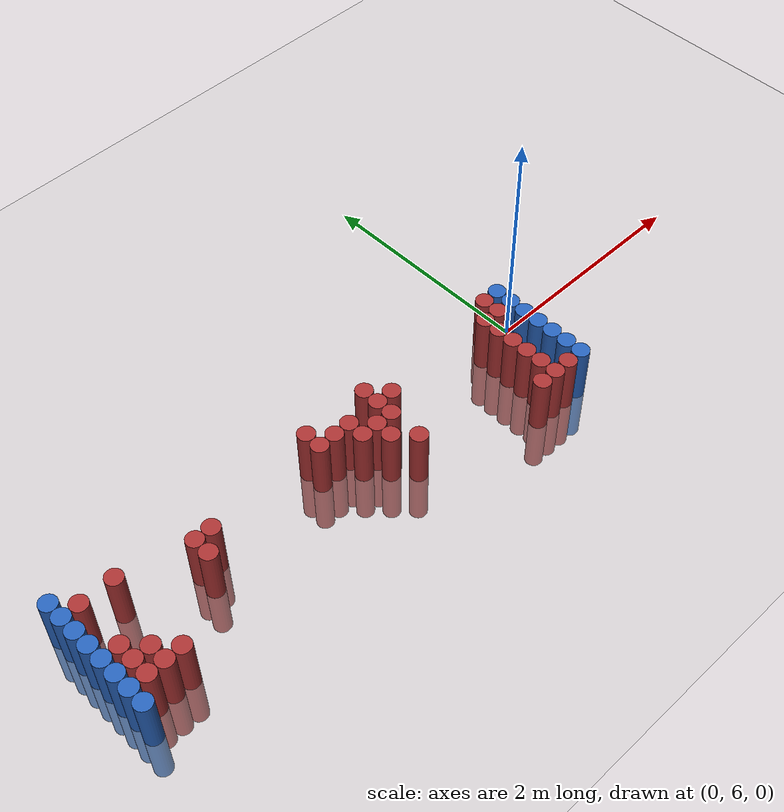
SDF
<sdf version="1.6">
 <world name="default">
  <model name="ground_plane">
   <static>1</static>
   <link name="link">
    <collision name="collision">
     <geometry><plane><normal>0 0 1</normal><size>100 100</size></plane></geometry>
     <surface><friction><ode><mu>100</mu><mu2>50</mu2></ode></friction></surface>
    </collision>
    <visual name="visual">
     <cast_shadows>0</cast_shadows>
     <geometry><plane><normal>0 0 1</normal><size>100 100</size></plane></geometry>
     <material>
      <script><uri>file://media/materials/scripts/gazebo.material</uri><name>Gazebo/Grey</name></script>
     </material>
    </visual>
   </link>
  </model>
  <model name="unit_cylinder_96">
   <static>1</static>
   <pose>-4.425000 5.175000 0.000000 0.000000 0.000000 0.000000</pose>
   <link name="link">
    <inertial>
     <mass>1</mass>
     <inertia><ixx>0.145833</ixx><ixy>0</ixy><ixz>0</ixz><iyy>0.145833</iyy><iyz>0</iyz><izz>0.125</izz></inertia>
    </inertial>
    <collision name="collision">
     <geometry><cylinder><radius>0.075000</radius><length>1</length></cylinder></geometry>
    </collision>
    <visual name="visual">
     <geometry><cylinder><radius>0.075000</radius><length>1</length></cylinder></geometry>
     <material>
      <ambient>0.152000 0.379000 0.720000 1</ambient>
      <diffuse>0.152000 0.379000 0.720000 1</diffuse>
     </material>
     <material>
      <script><name>Gazebo/Grey</name><uri>file://media/materials/scripts/gazebo.material</uri></script>
     </material>
    </visual>
   </link>
  </model>
  <model name="unit_cylinder_97">
   <static>1</static>
   <pose>-4.425000 5.325000 0.000000 0.000000 0.000000 0.000000</pose>
   <link name="link">
    <inertial>
     <mass>1</mass>
     <inertia><ixx>0.145833</ixx><ixy>0</ixy><ixz>0</ixz><iyy>0.145833</iyy><iyz>0</iyz><izz>0.125</izz></inertia>
    </inertial>
    <collision name="collision">
     <geometry><cylinder><radius>0.075000</radius><length>1</length></cylinder></geometry>
    </collision>
    <visual name="visual">
     <geometry><cylinder><radius>0.075000</radius><length>1</length></cylinder></geometry>
     <material>
      <ambient>0.152000 0.379000 0.720000 1</ambient>
      <diffuse>0.152000 0.379000 0.720000 1</diffuse>
     </material>
     <material>
      <script><name>Gazebo/Grey</name><uri>file://media/materials/scripts/gazebo.material</uri></script>
     </material>
    </visual>
   </link>
  </model>
  <model name="unit_cylinder_98">
   <static>1</static>
   <pose>-4.425000 5.475000 0.000000 0.000000 0.000000 0.000000</pose>
   <link name="link">
    <inertial>
     <mass>1</mass>
     <inertia><ixx>0.145833</ixx><ixy>0</ixy><ixz>0</ixz><iyy>0.145833</iyy><iyz>0</iyz><izz>0.125</izz></inertia>
    </inertial>
    <collision name="collision">
     <geometry><cylinder><radius>0.075000</radius><length>1</length></cylinder></geometry>
    </collision>
    <visual name="visual">
     <geometry><cylinder><radius>0.075000</radius><length>1</length></cylinder></geometry>
     <material>
      <ambient>0.152000 0.379000 0.720000 1</ambient>
      <diffuse>0.152000 0.379000 0.720000 1</diffuse>
     </material>
     <material>
      <script><name>Gazebo/Grey</name><uri>file://media/materials/scripts/gazebo.material</uri></script>
     </material>
    </visual>
   </link>
  </model>
  <model name="unit_cylinder_99">
   <static>1</static>
   <pose>-4.425000 5.625000 0.000000 0.000000 0.000000 0.000000</pose>
   <link name="link">
    <inertial>
     <mass>1</mass>
     <inertia><ixx>0.145833</ixx><ixy>0</ixy><ixz>0</ixz><iyy>0.145833</iyy><iyz>0</iyz><izz>0.125</izz></inertia>
    </inertial>
    <collision name="collision">
     <geometry><cylinder><radius>0.075000</radius><length>1</length></cylinder></geometry>
    </collision>
    <visual name="visual">
     <geometry><cylinder><radius>0.075000</radius><length>1</length></cylinder></geometry>
     <material>
      <ambient>0.152000 0.379000 0.720000 1</ambient>
      <diffuse>0.152000 0.379000 0.720000 1</diffuse>
     </material>
     <material>
      <script><name>Gazebo/Grey</name><uri>file://media/materials/scripts/gazebo.material</uri></script>
     </material>
    </visual>
   </link>
  </model>
  <model name="unit_cylinder_100">
   <static>1</static>
   <pose>-4.425000 5.775000 0.000000 0.000000 0.000000 0.000000</pose>
   <link name="link">
    <inertial>
     <mass>1</mass>
     <inertia><ixx>0.145833</ixx><ixy>0</ixy><ixz>0</ixz><iyy>0.145833</iyy><iyz>0</iyz><izz>0.125</izz></inertia>
    </inertial>
    <collision name="collision">
     <geometry><cylinder><radius>0.075000</radius><length>1</length></cylinder></geometry>
    </collision>
    <visual name="visual">
     <geometry><cylinder><radius>0.075000</radius><length>1</length></cylinder></geometry>
     <material>
      <ambient>0.152000 0.379000 0.720000 1</ambient>
      <diffuse>0.152000 0.379000 0.720000 1</diffuse>
     </material>
     <material>
      <script><name>Gazebo/Grey</name><uri>file://media/materials/scripts/gazebo.material</uri></script>
     </material>
    </visual>
   </link>
  </model>
  <model name="unit_cylinder_101">
   <static>1</static>
   <pose>-4.425000 5.925000 0.000000 0.000000 0.000000 0.000000</pose>
   <link name="link">
    <inertial>
     <mass>1</mass>
     <inertia><ixx>0.145833</ixx><ixy>0</ixy><ixz>0</ixz><iyy>0.145833</iyy><iyz>0</iyz><izz>0.125</izz></inertia>
    </inertial>
    <collision name="collision">
     <geometry><cylinder><radius>0.075000</radius><length>1</length></cylinder></geometry>
    </collision>
    <visual name="visual">
     <geometry><cylinder><radius>0.075000</radius><length>1</length></cylinder></geometry>
     <material>
      <ambient>0.152000 0.379000 0.720000 1</ambient>
      <diffuse>0.152000 0.379000 0.720000 1</diffuse>
     </material>
     <material>
      <script><name>Gazebo/Grey</name><uri>file://media/materials/scripts/gazebo.material</uri></script>
     </material>
    </visual>
   </link>
  </model>
  <model name="unit_cylinder_102">
   <static>1</static>
   <pose>-4.425000 6.075000 0.000000 0.000000 0.000000 0.000000</pose>
   <link name="link">
    <inertial>
     <mass>1</mass>
     <inertia><ixx>0.145833</ixx><ixy>0</ixy><ixz>0</ixz><iyy>0.145833</iyy><iyz>0</iyz><izz>0.125</izz></inertia>
    </inertial>
    <collision name="collision">
     <geometry><cylinder><radius>0.075000</radius><length>1</length></cylinder></geometry>
    </collision>
    <visual name="visual">
     <geometry><cylinder><radius>0.075000</radius><length>1</length></cylinder></geometry>
     <material>
      <ambient>0.152000 0.379000 0.720000 1</ambient>
      <diffuse>0.152000 0.379000 0.720000 1</diffuse>
     </material>
     <material>
      <script><name>Gazebo/Grey</name><uri>file://media/materials/scripts/gazebo.material</uri></script>
     </material>
    </visual>
   </link>
  </model>
  <model name="unit_cylinder_103">
   <static>1</static>
   <pose>-4.425000 6.225000 0.000000 0.000000 0.000000 0.000000</pose>
   <link name="link">
    <inertial>
     <mass>1</mass>
     <inertia><ixx>0.145833</ixx><ixy>0</ixy><ixz>0</ixz><iyy>0.145833</iyy><iyz>0</iyz><izz>0.125</izz></inertia>
    </inertial>
    <collision name="collision">
     <geometry><cylinder><radius>0.075000</radius><length>1</length></cylinder></geometry>
    </collision>
    <visual name="visual">
     <geometry><cylinder><radius>0.075000</radius><length>1</length></cylinder></geometry>
     <material>
      <ambient>0.152000 0.379000 0.720000 1</ambient>
      <diffuse>0.152000 0.379000 0.720000 1</diffuse>
     </material>
     <material>
      <script><name>Gazebo/Grey</name><uri>file://media/materials/scripts/gazebo.material</uri></script>
     </material>
    </visual>
   </link>
  </model>
  <model name="unit_cylinder_126">
   <static>1</static>
   <pose>-4.275000 5.325000 0.000000 0.000000 0.000000 0.000000</pose>
   <link name="link">
    <inertial>
     <mass>1</mass>
     <inertia><ixx>0.145833</ixx><ixy>0</ixy><ixz>0</ixz><iyy>0.145833</iyy><iyz>0</iyz><izz>0.125</izz></inertia>
    </inertial>
    <collision name="collision">
     <geometry><cylinder><radius>0.075000</radius><length>1</length></cylinder></geometry>
    </collision>
    <visual name="visual">
     <geometry><cylinder><radius>0.075000</radius><length>1</length></cylinder></geometry>
     <material>
      <ambient>0.648000 0.192000 0.192000 1</ambient>
      <diffuse>0.648000 0.192000 0.192000 1</diffuse>
     </material>
     <material>
      <script><name>Gazebo/Grey</name><uri>file://media/materials/scripts/gazebo.material</uri></script>
     </material>
    </visual>
   </link>
  </model>
  <model name="unit_cylinder_127">
   <static>1</static>
   <pose>-4.275000 5.475000 0.000000 0.000000 0.000000 0.000000</pose>
   <link name="link">
    <inertial>
     <mass>1</mass>
     <inertia><ixx>0.145833</ixx><ixy>0</ixy><ixz>0</ixz><iyy>0.145833</iyy><iyz>0</iyz><izz>0.125</izz></inertia>
    </inertial>
    <collision name="collision">
     <geometry><cylinder><radius>0.075000</radius><length>1</length></cylinder></geometry>
    </collision>
    <visual name="visual">
     <geometry><cylinder><radius>0.075000</radius><length>1</length></cylinder></geometry>
     <material>
      <ambient>0.648000 0.192000 0.192000 1</ambient>
      <diffuse>0.648000 0.192000 0.192000 1</diffuse>
     </material>
     <material>
      <script><name>Gazebo/Grey</name><uri>file://media/materials/scripts/gazebo.material</uri></script>
     </material>
    </visual>
   </link>
  </model>
  <model name="unit_cylinder_128">
   <static>1</static>
   <pose>-4.275000 5.625000 0.000000 0.000000 0.000000 0.000000</pose>
   <link name="link">
    <inertial>
     <mass>1</mass>
     <inertia><ixx>0.145833</ixx><ixy>0</ixy><ixz>0</ixz><iyy>0.145833</iyy><iyz>0</iyz><izz>0.125</izz></inertia>
    </inertial>
    <collision name="collision">
     <geometry><cylinder><radius>0.075000</radius><length>1</length></cylinder></geometry>
    </collision>
    <visual name="visual">
     <geometry><cylinder><radius>0.075000</radius><length>1</length></cylinder></geometry>
     <material>
      <ambient>0.648000 0.192000 0.192000 1</ambient>
      <diffuse>0.648000 0.192000 0.192000 1</diffuse>
     </material>
     <material>
      <script><name>Gazebo/Grey</name><uri>file://media/materials/scripts/gazebo.material</uri></script>
     </material>
    </visual>
   </link>
  </model>
  <model name="unit_cylinder_129">
   <static>1</static>
   <pose>-4.275000 6.075000 0.000000 0.000000 0.000000 0.000000</pose>
   <link name="link">
    <inertial>
     <mass>1</mass>
     <inertia><ixx>0.145833</ixx><ixy>0</ixy><ixz>0</ixz><iyy>0.145833</iyy><iyz>0</iyz><izz>0.125</izz></inertia>
    </inertial>
    <collision name="collision">
     <geometry><cylinder><radius>0.075000</radius><length>1</length></cylinder></geometry>
    </collision>
    <visual name="visual">
     <geometry><cylinder><radius>0.075000</radius><length>1</length></cylinder></geometry>
     <material>
      <ambient>0.648000 0.192000 0.192000 1</ambient>
      <diffuse>0.648000 0.192000 0.192000 1</diffuse>
     </material>
     <material>
      <script><name>Gazebo/Grey</name><uri>file://media/materials/scripts/gazebo.material</uri></script>
     </material>
    </visual>
   </link>
  </model>
  <model name="unit_cylinder_144">
   <static>1</static>
   <pose>-4.125000 5.325000 0.000000 0.000000 0.000000 0.000000</pose>
   <link name="link">
    <inertial>
     <mass>1</mass>
     <inertia><ixx>0.145833</ixx><ixy>0</ixy><ixz>0</ixz><iyy>0.145833</iyy><iyz>0</iyz><izz>0.125</izz></inertia>
    </inertial>
    <collision name="collision">
     <geometry><cylinder><radius>0.075000</radius><length>1</length></cylinder></geometry>
    </collision>
    <visual name="visual">
     <geometry><cylinder><radius>0.075000</radius><length>1</length></cylinder></geometry>
     <material>
      <ambient>0.648000 0.192000 0.192000 1</ambient>
      <diffuse>0.648000 0.192000 0.192000 1</diffuse>
     </material>
     <material>
      <script><name>Gazebo/Grey</name><uri>file://media/materials/scripts/gazebo.material</uri></script>
     </material>
    </visual>
   </link>
  </model>
  <model name="unit_cylinder_145">
   <static>1</static>
   <pose>-4.125000 5.475000 0.000000 0.000000 0.000000 0.000000</pose>
   <link name="link">
    <inertial>
     <mass>1</mass>
     <inertia><ixx>0.145833</ixx><ixy>0</ixy><ixz>0</ixz><iyy>0.145833</iyy><iyz>0</iyz><izz>0.125</izz></inertia>
    </inertial>
    <collision name="collision">
     <geometry><cylinder><radius>0.075000</radius><length>1</length></cylinder></geometry>
    </collision>
    <visual name="visual">
     <geometry><cylinder><radius>0.075000</radius><length>1</length></cylinder></geometry>
     <material>
      <ambient>0.648000 0.192000 0.192000 1</ambient>
      <diffuse>0.648000 0.192000 0.192000 1</diffuse>
     </material>
     <material>
      <script><name>Gazebo/Grey</name><uri>file://media/materials/scripts/gazebo.material</uri></script>
     </material>
    </visual>
   </link>
  </model>
  <model name="unit_cylinder_154">
   <static>1</static>
   <pose>-3.975000 5.325000 0.000000 0.000000 0.000000 0.000000</pose>
   <link name="link">
    <inertial>
     <mass>1</mass>
     <inertia><ixx>0.145833</ixx><ixy>0</ixy><ixz>0</ixz><iyy>0.145833</iyy><iyz>0</iyz><izz>0.125</izz></inertia>
    </inertial>
    <collision name="collision">
     <geometry><cylinder><radius>0.075000</radius><length>1</length></cylinder></geometry>
    </collision>
    <visual name="visual">
     <geometry><cylinder><radius>0.075000</radius><length>1</length></cylinder></geometry>
     <material>
      <ambient>0.648000 0.192000 0.192000 1</ambient>
      <diffuse>0.648000 0.192000 0.192000 1</diffuse>
     </material>
     <material>
      <script><name>Gazebo/Grey</name><uri>file://media/materials/scripts/gazebo.material</uri></script>
     </material>
    </visual>
   </link>
  </model>
  <model name="unit_cylinder_155">
   <static>1</static>
   <pose>-3.975000 6.075000 0.000000 0.000000 0.000000 0.000000</pose>
   <link name="link">
    <inertial>
     <mass>1</mass>
     <inertia><ixx>0.145833</ixx><ixy>0</ixy><ixz>0</ixz><iyy>0.145833</iyy><iyz>0</iyz><izz>0.125</izz></inertia>
    </inertial>
    <collision name="collision">
     <geometry><cylinder><radius>0.075000</radius><length>1</length></cylinder></geometry>
    </collision>
    <visual name="visual">
     <geometry><cylinder><radius>0.075000</radius><length>1</length></cylinder></geometry>
     <material>
      <ambient>0.648000 0.192000 0.192000 1</ambient>
      <diffuse>0.648000 0.192000 0.192000 1</diffuse>
     </material>
     <material>
      <script><name>Gazebo/Grey</name><uri>file://media/materials/scripts/gazebo.material</uri></script>
     </material>
    </visual>
   </link>
  </model>
  <model name="unit_cylinder_188">
   <static>1</static>
   <pose>-3.375000 5.775000 0.000000 0.000000 0.000000 0.000000</pose>
   <link name="link">
    <inertial>
     <mass>1</mass>
     <inertia><ixx>0.145833</ixx><ixy>0</ixy><ixz>0</ixz><iyy>0.145833</iyy><iyz>0</iyz><izz>0.125</izz></inertia>
    </inertial>
    <collision name="collision">
     <geometry><cylinder><radius>0.075000</radius><length>1</length></cylinder></geometry>
    </collision>
    <visual name="visual">
     <geometry><cylinder><radius>0.075000</radius><length>1</length></cylinder></geometry>
     <material>
      <ambient>0.648000 0.192000 0.192000 1</ambient>
      <diffuse>0.648000 0.192000 0.192000 1</diffuse>
     </material>
     <material>
      <script><name>Gazebo/Grey</name><uri>file://media/materials/scripts/gazebo.material</uri></script>
     </material>
    </visual>
   </link>
  </model>
  <model name="unit_cylinder_189">
   <static>1</static>
   <pose>-3.375000 5.925000 0.000000 0.000000 0.000000 0.000000</pose>
   <link name="link">
    <inertial>
     <mass>1</mass>
     <inertia><ixx>0.145833</ixx><ixy>0</ixy><ixz>0</ixz><iyy>0.145833</iyy><iyz>0</iyz><izz>0.125</izz></inertia>
    </inertial>
    <collision name="collision">
     <geometry><cylinder><radius>0.075000</radius><length>1</length></cylinder></geometry>
    </collision>
    <visual name="visual">
     <geometry><cylinder><radius>0.075000</radius><length>1</length></cylinder></geometry>
     <material>
      <ambient>0.648000 0.192000 0.192000 1</ambient>
      <diffuse>0.648000 0.192000 0.192000 1</diffuse>
     </material>
     <material>
      <script><name>Gazebo/Grey</name><uri>file://media/materials/scripts/gazebo.material</uri></script>
     </material>
    </visual>
   </link>
  </model>
  <model name="unit_cylinder_194">
   <static>1</static>
   <pose>-3.225000 5.925000 0.000000 0.000000 0.000000 0.000000</pose>
   <link name="link">
    <inertial>
     <mass>1</mass>
     <inertia><ixx>0.145833</ixx><ixy>0</ixy><ixz>0</ixz><iyy>0.145833</iyy><iyz>0</iyz><izz>0.125</izz></inertia>
    </inertial>
    <collision name="collision">
     <geometry><cylinder><radius>0.075000</radius><length>1</length></cylinder></geometry>
    </collision>
    <visual name="visual">
     <geometry><cylinder><radius>0.075000</radius><length>1</length></cylinder></geometry>
     <material>
      <ambient>0.648000 0.192000 0.192000 1</ambient>
      <diffuse>0.648000 0.192000 0.192000 1</diffuse>
     </material>
     <material>
      <script><name>Gazebo/Grey</name><uri>file://media/materials/scripts/gazebo.material</uri></script>
     </material>
    </visual>
   </link>
  </model>
  <model name="unit_cylinder_217">
   <static>1</static>
   <pose>-2.175000 5.925000 0.000000 0.000000 0.000000 0.000000</pose>
   <link name="link">
    <inertial>
     <mass>1</mass>
     <inertia><ixx>0.145833</ixx><ixy>0</ixy><ixz>0</ixz><iyy>0.145833</iyy><iyz>0</iyz><izz>0.125</izz></inertia>
    </inertial>
    <collision name="collision">
     <geometry><cylinder><radius>0.075000</radius><length>1</length></cylinder></geometry>
    </collision>
    <visual name="visual">
     <geometry><cylinder><radius>0.075000</radius><length>1</length></cylinder></geometry>
     <material>
      <ambient>0.648000 0.192000 0.192000 1</ambient>
      <diffuse>0.648000 0.192000 0.192000 1</diffuse>
     </material>
     <material>
      <script><name>Gazebo/Grey</name><uri>file://media/materials/scripts/gazebo.material</uri></script>
     </material>
    </visual>
   </link>
  </model>
  <model name="unit_cylinder_218">
   <static>1</static>
   <pose>-2.175000 6.075000 0.000000 0.000000 0.000000 0.000000</pose>
   <link name="link">
    <inertial>
     <mass>1</mass>
     <inertia><ixx>0.145833</ixx><ixy>0</ixy><ixz>0</ixz><iyy>0.145833</iyy><iyz>0</iyz><izz>0.125</izz></inertia>
    </inertial>
    <collision name="collision">
     <geometry><cylinder><radius>0.075000</radius><length>1</length></cylinder></geometry>
    </collision>
    <visual name="visual">
     <geometry><cylinder><radius>0.075000</radius><length>1</length></cylinder></geometry>
     <material>
      <ambient>0.648000 0.192000 0.192000 1</ambient>
      <diffuse>0.648000 0.192000 0.192000 1</diffuse>
     </material>
     <material>
      <script><name>Gazebo/Grey</name><uri>file://media/materials/scripts/gazebo.material</uri></script>
     </material>
    </visual>
   </link>
  </model>
  <model name="unit_cylinder_220">
   <static>1</static>
   <pose>-2.025000 5.925000 0.000000 0.000000 0.000000 0.000000</pose>
   <link name="link">
    <inertial>
     <mass>1</mass>
     <inertia><ixx>0.145833</ixx><ixy>0</ixy><ixz>0</ixz><iyy>0.145833</iyy><iyz>0</iyz><izz>0.125</izz></inertia>
    </inertial>
    <collision name="collision">
     <geometry><cylinder><radius>0.075000</radius><length>1</length></cylinder></geometry>
    </collision>
    <visual name="visual">
     <geometry><cylinder><radius>0.075000</radius><length>1</length></cylinder></geometry>
     <material>
      <ambient>0.648000 0.192000 0.192000 1</ambient>
      <diffuse>0.648000 0.192000 0.192000 1</diffuse>
     </material>
     <material>
      <script><name>Gazebo/Grey</name><uri>file://media/materials/scripts/gazebo.material</uri></script>
     </material>
    </visual>
   </link>
  </model>
  <model name="unit_cylinder_222">
   <static>1</static>
   <pose>-1.875000 5.775000 0.000000 0.000000 0.000000 0.000000</pose>
   <link name="link">
    <inertial>
     <mass>1</mass>
     <inertia><ixx>0.145833</ixx><ixy>0</ixy><ixz>0</ixz><iyy>0.145833</iyy><iyz>0</iyz><izz>0.125</izz></inertia>
    </inertial>
    <collision name="collision">
     <geometry><cylinder><radius>0.075000</radius><length>1</length></cylinder></geometry>
    </collision>
    <visual name="visual">
     <geometry><cylinder><radius>0.075000</radius><length>1</length></cylinder></geometry>
     <material>
      <ambient>0.648000 0.192000 0.192000 1</ambient>
      <diffuse>0.648000 0.192000 0.192000 1</diffuse>
     </material>
     <material>
      <script><name>Gazebo/Grey</name><uri>file://media/materials/scripts/gazebo.material</uri></script>
     </material>
    </visual>
   </link>
  </model>
  <model name="unit_cylinder_223">
   <static>1</static>
   <pose>-1.875000 5.925000 0.000000 0.000000 0.000000 0.000000</pose>
   <link name="link">
    <inertial>
     <mass>1</mass>
     <inertia><ixx>0.145833</ixx><ixy>0</ixy><ixz>0</ixz><iyy>0.145833</iyy><iyz>0</iyz><izz>0.125</izz></inertia>
    </inertial>
    <collision name="collision">
     <geometry><cylinder><radius>0.075000</radius><length>1</length></cylinder></geometry>
    </collision>
    <visual name="visual">
     <geometry><cylinder><radius>0.075000</radius><length>1</length></cylinder></geometry>
     <material>
      <ambient>0.648000 0.192000 0.192000 1</ambient>
      <diffuse>0.648000 0.192000 0.192000 1</diffuse>
     </material>
     <material>
      <script><name>Gazebo/Grey</name><uri>file://media/materials/scripts/gazebo.material</uri></script>
     </material>
    </visual>
   </link>
  </model>
  <model name="unit_cylinder_225">
   <static>1</static>
   <pose>-1.725000 5.625000 0.000000 0.000000 0.000000 0.000000</pose>
   <link name="link">
    <inertial>
     <mass>1</mass>
     <inertia><ixx>0.145833</ixx><ixy>0</ixy><ixz>0</ixz><iyy>0.145833</iyy><iyz>0</iyz><izz>0.125</izz></inertia>
    </inertial>
    <collision name="collision">
     <geometry><cylinder><radius>0.075000</radius><length>1</length></cylinder></geometry>
    </collision>
    <visual name="visual">
     <geometry><cylinder><radius>0.075000</radius><length>1</length></cylinder></geometry>
     <material>
      <ambient>0.648000 0.192000 0.192000 1</ambient>
      <diffuse>0.648000 0.192000 0.192000 1</diffuse>
     </material>
     <material>
      <script><name>Gazebo/Grey</name><uri>file://media/materials/scripts/gazebo.material</uri></script>
     </material>
    </visual>
   </link>
  </model>
  <model name="unit_cylinder_226">
   <static>1</static>
   <pose>-1.725000 5.775000 0.000000 0.000000 0.000000 0.000000</pose>
   <link name="link">
    <inertial>
     <mass>1</mass>
     <inertia><ixx>0.145833</ixx><ixy>0</ixy><ixz>0</ixz><iyy>0.145833</iyy><iyz>0</iyz><izz>0.125</izz></inertia>
    </inertial>
    <collision name="collision">
     <geometry><cylinder><radius>0.075000</radius><length>1</length></cylinder></geometry>
    </collision>
    <visual name="visual">
     <geometry><cylinder><radius>0.075000</radius><length>1</length></cylinder></geometry>
     <material>
      <ambient>0.648000 0.192000 0.192000 1</ambient>
      <diffuse>0.648000 0.192000 0.192000 1</diffuse>
     </material>
     <material>
      <script><name>Gazebo/Grey</name><uri>file://media/materials/scripts/gazebo.material</uri></script>
     </material>
    </visual>
   </link>
  </model>
  <model name="unit_cylinder_229">
   <static>1</static>
   <pose>-1.575000 5.475000 0.000000 0.000000 0.000000 0.000000</pose>
   <link name="link">
    <inertial>
     <mass>1</mass>
     <inertia><ixx>0.145833</ixx><ixy>0</ixy><ixz>0</ixz><iyy>0.145833</iyy><iyz>0</iyz><izz>0.125</izz></inertia>
    </inertial>
    <collision name="collision">
     <geometry><cylinder><radius>0.075000</radius><length>1</length></cylinder></geometry>
    </collision>
    <visual name="visual">
     <geometry><cylinder><radius>0.075000</radius><length>1</length></cylinder></geometry>
     <material>
      <ambient>0.648000 0.192000 0.192000 1</ambient>
      <diffuse>0.648000 0.192000 0.192000 1</diffuse>
     </material>
     <material>
      <script><name>Gazebo/Grey</name><uri>file://media/materials/scripts/gazebo.material</uri></script>
     </material>
    </visual>
   </link>
  </model>
  <model name="unit_cylinder_230">
   <static>1</static>
   <pose>-1.575000 5.775000 0.000000 0.000000 0.000000 0.000000</pose>
   <link name="link">
    <inertial>
     <mass>1</mass>
     <inertia><ixx>0.145833</ixx><ixy>0</ixy><ixz>0</ixz><iyy>0.145833</iyy><iyz>0</iyz><izz>0.125</izz></inertia>
    </inertial>
    <collision name="collision">
     <geometry><cylinder><radius>0.075000</radius><length>1</length></cylinder></geometry>
    </collision>
    <visual name="visual">
     <geometry><cylinder><radius>0.075000</radius><length>1</length></cylinder></geometry>
     <material>
      <ambient>0.648000 0.192000 0.192000 1</ambient>
      <diffuse>0.648000 0.192000 0.192000 1</diffuse>
     </material>
     <material>
      <script><name>Gazebo/Grey</name><uri>file://media/materials/scripts/gazebo.material</uri></script>
     </material>
    </visual>
   </link>
  </model>
  <model name="unit_cylinder_231">
   <static>1</static>
   <pose>-1.575000 5.925000 0.000000 0.000000 0.000000 0.000000</pose>
   <link name="link">
    <inertial>
     <mass>1</mass>
     <inertia><ixx>0.145833</ixx><ixy>0</ixy><ixz>0</ixz><iyy>0.145833</iyy><iyz>0</iyz><izz>0.125</izz></inertia>
    </inertial>
    <collision name="collision">
     <geometry><cylinder><radius>0.075000</radius><length>1</length></cylinder></geometry>
    </collision>
    <visual name="visual">
     <geometry><cylinder><radius>0.075000</radius><length>1</length></cylinder></geometry>
     <material>
      <ambient>0.648000 0.192000 0.192000 1</ambient>
      <diffuse>0.648000 0.192000 0.192000 1</diffuse>
     </material>
     <material>
      <script><name>Gazebo/Grey</name><uri>file://media/materials/scripts/gazebo.material</uri></script>
     </material>
    </visual>
   </link>
  </model>
  <model name="unit_cylinder_232">
   <static>1</static>
   <pose>-1.575000 6.075000 0.000000 0.000000 0.000000 0.000000</pose>
   <link name="link">
    <inertial>
     <mass>1</mass>
     <inertia><ixx>0.145833</ixx><ixy>0</ixy><ixz>0</ixz><iyy>0.145833</iyy><iyz>0</iyz><izz>0.125</izz></inertia>
    </inertial>
    <collision name="collision">
     <geometry><cylinder><radius>0.075000</radius><length>1</length></cylinder></geometry>
    </collision>
    <visual name="visual">
     <geometry><cylinder><radius>0.075000</radius><length>1</length></cylinder></geometry>
     <material>
      <ambient>0.648000 0.192000 0.192000 1</ambient>
      <diffuse>0.648000 0.192000 0.192000 1</diffuse>
     </material>
     <material>
      <script><name>Gazebo/Grey</name><uri>file://media/materials/scripts/gazebo.material</uri></script>
     </material>
    </visual>
   </link>
  </model>
  <model name="unit_cylinder_241">
   <static>1</static>
   <pose>-1.425000 5.925000 0.000000 0.000000 0.000000 0.000000</pose>
   <link name="link">
    <inertial>
     <mass>1</mass>
     <inertia><ixx>0.145833</ixx><ixy>0</ixy><ixz>0</ixz><iyy>0.145833</iyy><iyz>0</iyz><izz>0.125</izz></inertia>
    </inertial>
    <collision name="collision">
     <geometry><cylinder><radius>0.075000</radius><length>1</length></cylinder></geometry>
    </collision>
    <visual name="visual">
     <geometry><cylinder><radius>0.075000</radius><length>1</length></cylinder></geometry>
     <material>
      <ambient>0.648000 0.192000 0.192000 1</ambient>
      <diffuse>0.648000 0.192000 0.192000 1</diffuse>
     </material>
     <material>
      <script><name>Gazebo/Grey</name><uri>file://media/materials/scripts/gazebo.material</uri></script>
     </material>
    </visual>
   </link>
  </model>
  <model name="unit_cylinder_271">
   <static>1</static>
   <pose>-0.525000 5.175000 0.000000 0.000000 0.000000 0.000000</pose>
   <link name="link">
    <inertial>
     <mass>1</mass>
     <inertia><ixx>0.145833</ixx><ixy>0</ixy><ixz>0</ixz><iyy>0.145833</iyy><iyz>0</iyz><izz>0.125</izz></inertia>
    </inertial>
    <collision name="collision">
     <geometry><cylinder><radius>0.075000</radius><length>1</length></cylinder></geometry>
    </collision>
    <visual name="visual">
     <geometry><cylinder><radius>0.075000</radius><length>1</length></cylinder></geometry>
     <material>
      <ambient>0.648000 0.192000 0.192000 1</ambient>
      <diffuse>0.648000 0.192000 0.192000 1</diffuse>
     </material>
     <material>
      <script><name>Gazebo/Grey</name><uri>file://media/materials/scripts/gazebo.material</uri></script>
     </material>
    </visual>
   </link>
  </model>
  <model name="unit_cylinder_276">
   <static>1</static>
   <pose>-0.375000 5.175000 0.000000 0.000000 0.000000 0.000000</pose>
   <link name="link">
    <inertial>
     <mass>1</mass>
     <inertia><ixx>0.145833</ixx><ixy>0</ixy><ixz>0</ixz><iyy>0.145833</iyy><iyz>0</iyz><izz>0.125</izz></inertia>
    </inertial>
    <collision name="collision">
     <geometry><cylinder><radius>0.075000</radius><length>1</length></cylinder></geometry>
    </collision>
    <visual name="visual">
     <geometry><cylinder><radius>0.075000</radius><length>1</length></cylinder></geometry>
     <material>
      <ambient>0.648000 0.192000 0.192000 1</ambient>
      <diffuse>0.648000 0.192000 0.192000 1</diffuse>
     </material>
     <material>
      <script><name>Gazebo/Grey</name><uri>file://media/materials/scripts/gazebo.material</uri></script>
     </material>
    </visual>
   </link>
  </model>
  <model name="unit_cylinder_277">
   <static>1</static>
   <pose>-0.375000 5.325000 0.000000 0.000000 0.000000 0.000000</pose>
   <link name="link">
    <inertial>
     <mass>1</mass>
     <inertia><ixx>0.145833</ixx><ixy>0</ixy><ixz>0</ixz><iyy>0.145833</iyy><iyz>0</iyz><izz>0.125</izz></inertia>
    </inertial>
    <collision name="collision">
     <geometry><cylinder><radius>0.075000</radius><length>1</length></cylinder></geometry>
    </collision>
    <visual name="visual">
     <geometry><cylinder><radius>0.075000</radius><length>1</length></cylinder></geometry>
     <material>
      <ambient>0.648000 0.192000 0.192000 1</ambient>
      <diffuse>0.648000 0.192000 0.192000 1</diffuse>
     </material>
     <material>
      <script><name>Gazebo/Grey</name><uri>file://media/materials/scripts/gazebo.material</uri></script>
     </material>
    </visual>
   </link>
  </model>
  <model name="unit_cylinder_278">
   <static>1</static>
   <pose>-0.375000 5.475000 0.000000 0.000000 0.000000 0.000000</pose>
   <link name="link">
    <inertial>
     <mass>1</mass>
     <inertia><ixx>0.145833</ixx><ixy>0</ixy><ixz>0</ixz><iyy>0.145833</iyy><iyz>0</iyz><izz>0.125</izz></inertia>
    </inertial>
    <collision name="collision">
     <geometry><cylinder><radius>0.075000</radius><length>1</length></cylinder></geometry>
    </collision>
    <visual name="visual">
     <geometry><cylinder><radius>0.075000</radius><length>1</length></cylinder></geometry>
     <material>
      <ambient>0.648000 0.192000 0.192000 1</ambient>
      <diffuse>0.648000 0.192000 0.192000 1</diffuse>
     </material>
     <material>
      <script><name>Gazebo/Grey</name><uri>file://media/materials/scripts/gazebo.material</uri></script>
     </material>
    </visual>
   </link>
  </model>
  <model name="unit_cylinder_279">
   <static>1</static>
   <pose>-0.375000 5.625000 0.000000 0.000000 0.000000 0.000000</pose>
   <link name="link">
    <inertial>
     <mass>1</mass>
     <inertia><ixx>0.145833</ixx><ixy>0</ixy><ixz>0</ixz><iyy>0.145833</iyy><iyz>0</iyz><izz>0.125</izz></inertia>
    </inertial>
    <collision name="collision">
     <geometry><cylinder><radius>0.075000</radius><length>1</length></cylinder></geometry>
    </collision>
    <visual name="visual">
     <geometry><cylinder><radius>0.075000</radius><length>1</length></cylinder></geometry>
     <material>
      <ambient>0.648000 0.192000 0.192000 1</ambient>
      <diffuse>0.648000 0.192000 0.192000 1</diffuse>
     </material>
     <material>
      <script><name>Gazebo/Grey</name><uri>file://media/materials/scripts/gazebo.material</uri></script>
     </material>
    </visual>
   </link>
  </model>
  <model name="unit_cylinder_280">
   <static>1</static>
   <pose>-0.375000 5.775000 0.000000 0.000000 0.000000 0.000000</pose>
   <link name="link">
    <inertial>
     <mass>1</mass>
     <inertia><ixx>0.145833</ixx><ixy>0</ixy><ixz>0</ixz><iyy>0.145833</iyy><iyz>0</iyz><izz>0.125</izz></inertia>
    </inertial>
    <collision name="collision">
     <geometry><cylinder><radius>0.075000</radius><length>1</length></cylinder></geometry>
    </collision>
    <visual name="visual">
     <geometry><cylinder><radius>0.075000</radius><length>1</length></cylinder></geometry>
     <material>
      <ambient>0.648000 0.192000 0.192000 1</ambient>
      <diffuse>0.648000 0.192000 0.192000 1</diffuse>
     </material>
     <material>
      <script><name>Gazebo/Grey</name><uri>file://media/materials/scripts/gazebo.material</uri></script>
     </material>
    </visual>
   </link>
  </model>
  <model name="unit_cylinder_281">
   <static>1</static>
   <pose>-0.375000 5.925000 0.000000 0.000000 0.000000 0.000000</pose>
   <link name="link">
    <inertial>
     <mass>1</mass>
     <inertia><ixx>0.145833</ixx><ixy>0</ixy><ixz>0</ixz><iyy>0.145833</iyy><iyz>0</iyz><izz>0.125</izz></inertia>
    </inertial>
    <collision name="collision">
     <geometry><cylinder><radius>0.075000</radius><length>1</length></cylinder></geometry>
    </collision>
    <visual name="visual">
     <geometry><cylinder><radius>0.075000</radius><length>1</length></cylinder></geometry>
     <material>
      <ambient>0.648000 0.192000 0.192000 1</ambient>
      <diffuse>0.648000 0.192000 0.192000 1</diffuse>
     </material>
     <material>
      <script><name>Gazebo/Grey</name><uri>file://media/materials/scripts/gazebo.material</uri></script>
     </material>
    </visual>
   </link>
  </model>
  <model name="unit_cylinder_292">
   <static>1</static>
   <pose>-0.225000 5.175000 0.000000 0.000000 0.000000 0.000000</pose>
   <link name="link">
    <inertial>
     <mass>1</mass>
     <inertia><ixx>0.145833</ixx><ixy>0</ixy><ixz>0</ixz><iyy>0.145833</iyy><iyz>0</iyz><izz>0.125</izz></inertia>
    </inertial>
    <collision name="collision">
     <geometry><cylinder><radius>0.075000</radius><length>1</length></cylinder></geometry>
    </collision>
    <visual name="visual">
     <geometry><cylinder><radius>0.075000</radius><length>1</length></cylinder></geometry>
     <material>
      <ambient>0.648000 0.192000 0.192000 1</ambient>
      <diffuse>0.648000 0.192000 0.192000 1</diffuse>
     </material>
     <material>
      <script><name>Gazebo/Grey</name><uri>file://media/materials/scripts/gazebo.material</uri></script>
     </material>
    </visual>
   </link>
  </model>
  <model name="unit_cylinder_293">
   <static>1</static>
   <pose>-0.225000 5.925000 0.000000 0.000000 0.000000 0.000000</pose>
   <link name="link">
    <inertial>
     <mass>1</mass>
     <inertia><ixx>0.145833</ixx><ixy>0</ixy><ixz>0</ixz><iyy>0.145833</iyy><iyz>0</iyz><izz>0.125</izz></inertia>
    </inertial>
    <collision name="collision">
     <geometry><cylinder><radius>0.075000</radius><length>1</length></cylinder></geometry>
    </collision>
    <visual name="visual">
     <geometry><cylinder><radius>0.075000</radius><length>1</length></cylinder></geometry>
     <material>
      <ambient>0.648000 0.192000 0.192000 1</ambient>
      <diffuse>0.648000 0.192000 0.192000 1</diffuse>
     </material>
     <material>
      <script><name>Gazebo/Grey</name><uri>file://media/materials/scripts/gazebo.material</uri></script>
     </material>
    </visual>
   </link>
  </model>
  <model name="unit_cylinder_294">
   <static>1</static>
   <pose>-0.225000 6.075000 0.000000 0.000000 0.000000 0.000000</pose>
   <link name="link">
    <inertial>
     <mass>1</mass>
     <inertia><ixx>0.145833</ixx><ixy>0</ixy><ixz>0</ixz><iyy>0.145833</iyy><iyz>0</iyz><izz>0.125</izz></inertia>
    </inertial>
    <collision name="collision">
     <geometry><cylinder><radius>0.075000</radius><length>1</length></cylinder></geometry>
    </collision>
    <visual name="visual">
     <geometry><cylinder><radius>0.075000</radius><length>1</length></cylinder></geometry>
     <material>
      <ambient>0.648000 0.192000 0.192000 1</ambient>
      <diffuse>0.648000 0.192000 0.192000 1</diffuse>
     </material>
     <material>
      <script><name>Gazebo/Grey</name><uri>file://media/materials/scripts/gazebo.material</uri></script>
     </material>
    </visual>
   </link>
  </model>
  <model name="unit_cylinder_306">
   <static>1</static>
   <pose>-0.075000 5.175000 0.000000 0.000000 0.000000 0.000000</pose>
   <link name="link">
    <inertial>
     <mass>1</mass>
     <inertia><ixx>0.145833</ixx><ixy>0</ixy><ixz>0</ixz><iyy>0.145833</iyy><iyz>0</iyz><izz>0.125</izz></inertia>
    </inertial>
    <collision name="collision">
     <geometry><cylinder><radius>0.075000</radius><length>1</length></cylinder></geometry>
    </collision>
    <visual name="visual">
     <geometry><cylinder><radius>0.075000</radius><length>1</length></cylinder></geometry>
     <material>
      <ambient>0.152000 0.379000 0.720000 1</ambient>
      <diffuse>0.152000 0.379000 0.720000 1</diffuse>
     </material>
     <material>
      <script><name>Gazebo/Grey</name><uri>file://media/materials/scripts/gazebo.material</uri></script>
     </material>
    </visual>
   </link>
  </model>
  <model name="unit_cylinder_307">
   <static>1</static>
   <pose>-0.075000 5.325000 0.000000 0.000000 0.000000 0.000000</pose>
   <link name="link">
    <inertial>
     <mass>1</mass>
     <inertia><ixx>0.145833</ixx><ixy>0</ixy><ixz>0</ixz><iyy>0.145833</iyy><iyz>0</iyz><izz>0.125</izz></inertia>
    </inertial>
    <collision name="collision">
     <geometry><cylinder><radius>0.075000</radius><length>1</length></cylinder></geometry>
    </collision>
    <visual name="visual">
     <geometry><cylinder><radius>0.075000</radius><length>1</length></cylinder></geometry>
     <material>
      <ambient>0.152000 0.379000 0.720000 1</ambient>
      <diffuse>0.152000 0.379000 0.720000 1</diffuse>
     </material>
     <material>
      <script><name>Gazebo/Grey</name><uri>file://media/materials/scripts/gazebo.material</uri></script>
     </material>
    </visual>
   </link>
  </model>
  <model name="unit_cylinder_308">
   <static>1</static>
   <pose>-0.075000 5.475000 0.000000 0.000000 0.000000 0.000000</pose>
   <link name="link">
    <inertial>
     <mass>1</mass>
     <inertia><ixx>0.145833</ixx><ixy>0</ixy><ixz>0</ixz><iyy>0.145833</iyy><iyz>0</iyz><izz>0.125</izz></inertia>
    </inertial>
    <collision name="collision">
     <geometry><cylinder><radius>0.075000</radius><length>1</length></cylinder></geometry>
    </collision>
    <visual name="visual">
     <geometry><cylinder><radius>0.075000</radius><length>1</length></cylinder></geometry>
     <material>
      <ambient>0.152000 0.379000 0.720000 1</ambient>
      <diffuse>0.152000 0.379000 0.720000 1</diffuse>
     </material>
     <material>
      <script><name>Gazebo/Grey</name><uri>file://media/materials/scripts/gazebo.material</uri></script>
     </material>
    </visual>
   </link>
  </model>
  <model name="unit_cylinder_309">
   <static>1</static>
   <pose>-0.075000 5.625000 0.000000 0.000000 0.000000 0.000000</pose>
   <link name="link">
    <inertial>
     <mass>1</mass>
     <inertia><ixx>0.145833</ixx><ixy>0</ixy><ixz>0</ixz><iyy>0.145833</iyy><iyz>0</iyz><izz>0.125</izz></inertia>
    </inertial>
    <collision name="collision">
     <geometry><cylinder><radius>0.075000</radius><length>1</length></cylinder></geometry>
    </collision>
    <visual name="visual">
     <geometry><cylinder><radius>0.075000</radius><length>1</length></cylinder></geometry>
     <material>
      <ambient>0.152000 0.379000 0.720000 1</ambient>
      <diffuse>0.152000 0.379000 0.720000 1</diffuse>
     </material>
     <material>
      <script><name>Gazebo/Grey</name><uri>file://media/materials/scripts/gazebo.material</uri></script>
     </material>
    </visual>
   </link>
  </model>
  <model name="unit_cylinder_310">
   <static>1</static>
   <pose>-0.075000 5.775000 0.000000 0.000000 0.000000 0.000000</pose>
   <link name="link">
    <inertial>
     <mass>1</mass>
     <inertia><ixx>0.145833</ixx><ixy>0</ixy><ixz>0</ixz><iyy>0.145833</iyy><iyz>0</iyz><izz>0.125</izz></inertia>
    </inertial>
    <collision name="collision">
     <geometry><cylinder><radius>0.075000</radius><length>1</length></cylinder></geometry>
    </collision>
    <visual name="visual">
     <geometry><cylinder><radius>0.075000</radius><length>1</length></cylinder></geometry>
     <material>
      <ambient>0.152000 0.379000 0.720000 1</ambient>
      <diffuse>0.152000 0.379000 0.720000 1</diffuse>
     </material>
     <material>
      <script><name>Gazebo/Grey</name><uri>file://media/materials/scripts/gazebo.material</uri></script>
     </material>
    </visual>
   </link>
  </model>
  <model name="unit_cylinder_311">
   <static>1</static>
   <pose>-0.075000 5.925000 0.000000 0.000000 0.000000 0.000000</pose>
   <link name="link">
    <inertial>
     <mass>1</mass>
     <inertia><ixx>0.145833</ixx><ixy>0</ixy><ixz>0</ixz><iyy>0.145833</iyy><iyz>0</iyz><izz>0.125</izz></inertia>
    </inertial>
    <collision name="collision">
     <geometry><cylinder><radius>0.075000</radius><length>1</length></cylinder></geometry>
    </collision>
    <visual name="visual">
     <geometry><cylinder><radius>0.075000</radius><length>1</length></cylinder></geometry>
     <material>
      <ambient>0.152000 0.379000 0.720000 1</ambient>
      <diffuse>0.152000 0.379000 0.720000 1</diffuse>
     </material>
     <material>
      <script><name>Gazebo/Grey</name><uri>file://media/materials/scripts/gazebo.material</uri></script>
     </material>
    </visual>
   </link>
  </model>
  <model name="unit_cylinder_312">
   <static>1</static>
   <pose>-0.075000 6.075000 0.000000 0.000000 0.000000 0.000000</pose>
   <link name="link">
    <inertial>
     <mass>1</mass>
     <inertia><ixx>0.145833</ixx><ixy>0</ixy><ixz>0</ixz><iyy>0.145833</iyy><iyz>0</iyz><izz>0.125</izz></inertia>
    </inertial>
    <collision name="collision">
     <geometry><cylinder><radius>0.075000</radius><length>1</length></cylinder></geometry>
    </collision>
    <visual name="visual">
     <geometry><cylinder><radius>0.075000</radius><length>1</length></cylinder></geometry>
     <material>
      <ambient>0.152000 0.379000 0.720000 1</ambient>
      <diffuse>0.152000 0.379000 0.720000 1</diffuse>
     </material>
     <material>
      <script><name>Gazebo/Grey</name><uri>file://media/materials/scripts/gazebo.material</uri></script>
     </material>
    </visual>
   </link>
  </model>
 </world>
</sdf>
